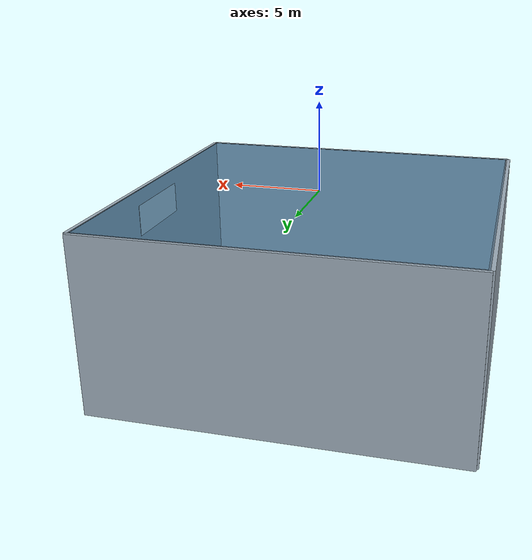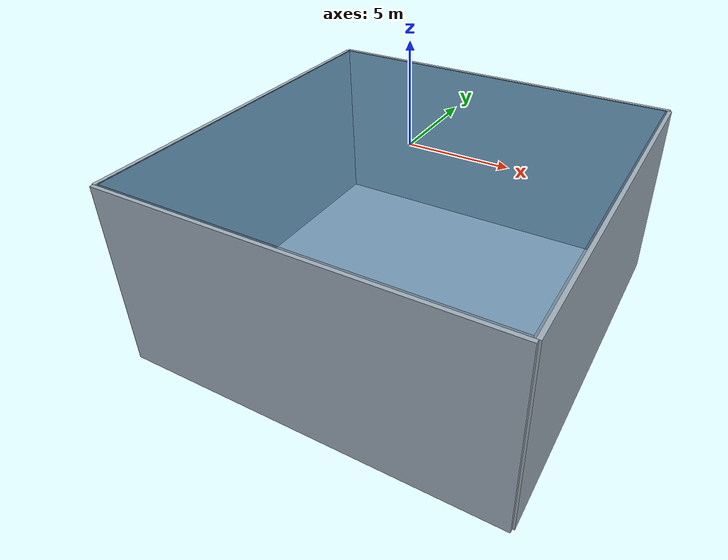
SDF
<sdf version="1.9">
 <world name="playground">
  <gravity>0 0 -9.81</gravity>
  <physics name="1ms" type="ode">
   <max_step_size>0.001</max_step_size>
   <real_time_factor>1.0</real_time_factor>
  </physics>
  <plugin filename="gz-sim-physics-system" name="gz::sim::systems::Physics"/>
  <plugin filename="gz-sim-user-commands-system" name="gz::sim::systems::UserCommands"/>
  <plugin filename="gz-sim-scene-broadcaster-system" name="gz::sim::systems::SceneBroadcaster"/>
  <plugin filename="gz-sim-contact-system" name="gz::sim::systems::Contact"/>
  <plugin filename="gz-sim-imu-system" name="gz::sim::systems::Imu"/>
  <plugin filename="gz-sim-air-pressure-system" name="gz::sim::systems::AirPressure"/>
  <plugin filename="gz-sim-air-speed-system" name="gz::sim::systems::AirSpeed"/>
  <plugin filename="gz-sim-apply-link-wrench-system" name="gz::sim::systems::ApplyLinkWrench"/>
  <plugin filename="gz-sim-navsat-system" name="gz::sim::systems::NavSat"/>
  <plugin filename="gz-sim-magnetometer-system" name="gz::sim::systems::Magnetometer"/>
  <plugin filename="gz-sim-sensors-system" name="gz::sim::systems::Sensors">
   <render_engine>ogre2</render_engine>
  </plugin>
  <plugin filename="libOpticalFlowSystem.so" name="custom::OpticalFlowSystem"/>
  <plugin filename="libGstCameraSystem.so" name="custom::GstCameraSystem"/>
  <plugin filename="gz-sim-buoyancy-system" name="gz::sim::systems::Buoyancy">
   <graded_buoyancy>
    <default_density>1000.0</default_density>
    <density_change><above_depth>0.0</above_depth><density>1.225</density></density_change>
   </graded_buoyancy>
   <enable>teleaquah8_0</enable>
   <enable>teleaquah8</enable>
   <enable>teleaquah8</enable>
   <enable>teleh4z_0</enable>
   <enable>teleh4z</enable>
   <enable>teleaquah8p_mono_cam</enable>
   <enable>teleaquah8p_mono_cam_0</enable>
  </plugin>
  <scene>
   <ambient>0.48 0.58 0.64 1.0</ambient>
   <background>0.53 0.81 0.92 1.0</background>
   <grid>false</grid>
   <shadows>true</shadows>
   <fog>
    <type>linear</type>
    <color>0.10 0.34 0.52 1.0</color>
    <density>0.02</density>
    <start>6.0</start>
    <end>28.0</end>
   </fog>
  </scene>
  <light type="directional" name="sun">
   <pose>0 0 80 0 0 0</pose>
   <diffuse>0.95 0.95 0.90 1</diffuse>
   <specular>0.25 0.25 0.25 1</specular>
   <attenuation>
    <range>3000</range>
    <constant>0.9</constant>
    <linear>0.01</linear>
    <quadratic>0.001</quadratic>
   </attenuation>
   <direction>-0.35 0.15 -0.92</direction>
  </light>
  <model name="square_pool_20m">
   <static>true</static>
   <link name="pool_bottom">
    <pose>0 0 -10.0 0 0 0</pose>
    <collision name="collision"><geometry><box><size>20.0 20.0 0.2</size></box></geometry></collision>
    <visual name="visual">
     <geometry><box><size>20.0 20.0 0.2</size></box></geometry>
     <material><ambient>0.68 0.72 0.76 1</ambient><diffuse>0.68 0.72 0.76 1</diffuse></material>
    </visual>
   </link>
   <link name="pool_wall_north">
    <pose>0 10.1 -5.0 0 0 0</pose>
    <collision name="collision"><geometry><box><size>20.2 0.2 10.0</size></box></geometry></collision>
    <visual name="visual">
     <geometry><box><size>20.2 0.2 10.0</size></box></geometry>
     <material><ambient>0.62 0.68 0.73 1</ambient><diffuse>0.62 0.68 0.73 1</diffuse></material>
    </visual>
   </link>
   <link name="pool_wall_south">
    <pose>0 -10.1 -5.0 0 0 0</pose>
    <collision name="collision"><geometry><box><size>20.2 0.2 10.0</size></box></geometry></collision>
    <visual name="visual">
     <geometry><box><size>20.2 0.2 10.0</size></box></geometry>
     <material><ambient>0.62 0.68 0.73 1</ambient><diffuse>0.62 0.68 0.73 1</diffuse></material>
    </visual>
   </link>
   <link name="pool_wall_east">
    <pose>10.1 0 -5.0 0 0 0</pose>
    <collision name="collision"><geometry><box><size>0.2 20.0 10.0</size></box></geometry></collision>
    <visual name="visual">
     <geometry><box><size>0.2 20.0 10.0</size></box></geometry>
     <material><ambient>0.62 0.68 0.73 1</ambient><diffuse>0.62 0.68 0.73 1</diffuse></material>
    </visual>
   </link>
   <link name="pool_wall_west">
    <pose>-10.1 0 -5.0 0 0 0</pose>
    <collision name="collision"><geometry><box><size>0.2 20.0 10.0</size></box></geometry></collision>
    <visual name="visual">
     <geometry><box><size>0.2 20.0 10.0</size></box></geometry>
     <material><ambient>0.62 0.68 0.73 1</ambient><diffuse>0.62 0.68 0.73 1</diffuse></material>
    </visual>
   </link>
   <link name="pool_reference_wall">
    <pose>9.95 0 -1.8 0 0 0</pose>
    <visual name="lane_panel">
     <geometry><box><size>0.02 5.0 1.8</size></box></geometry>
     <material><ambient>0.78 0.84 0.88 1</ambient><diffuse>0.78 0.84 0.88 1</diffuse></material>
    </visual>
   </link>
   <link name="water_volume">
    <pose>0 0 -5.0 0 0 0</pose>
    <visual name="water_surface_visual">
     <pose>0 0 5.0 0 0 0</pose>
     <geometry><box><size>19.8 19.8 0.01</size></box></geometry>
     <material>
      <ambient>0.14 0.46 0.68 0.38</ambient>
      <diffuse>0.14 0.46 0.68 0.38</diffuse>
      <specular>0.85 0.85 0.85 0.50</specular>
      <emissive>0.01 0.02 0.03 0.05</emissive>
     </material>
    </visual>
    <visual name="water_bottom_visual">
     <pose>0 0 -5.0 0 0 0</pose>
     <geometry><box><size>19.8 19.8 0.02</size></box></geometry>
     <material>
      <ambient>0.10 0.35 0.55 0.28</ambient>
      <diffuse>0.10 0.35 0.55 0.28</diffuse>
      <specular>0.30 0.30 0.30 0.20</specular>
     </material>
    </visual>
    <visual name="water_north_visual">
     <pose>0 9.9 0 0 0 0</pose>
     <geometry><box><size>19.8 0.08 10.0</size></box></geometry>
     <material>
      <ambient>0.10 0.35 0.55 0.34</ambient>
      <diffuse>0.10 0.35 0.55 0.34</diffuse>
      <specular>0.30 0.30 0.30 0.24</specular>
     </material>
    </visual>
    <visual name="water_south_visual">
     <pose>0 -9.9 0 0 0 0</pose>
     <geometry><box><size>19.8 0.08 10.0</size></box></geometry>
     <material>
      <ambient>0.10 0.35 0.55 0.34</ambient>
      <diffuse>0.10 0.35 0.55 0.34</diffuse>
      <specular>0.30 0.30 0.30 0.24</specular>
     </material>
    </visual>
    <visual name="water_east_visual">
     <pose>9.9 0 0 0 0 0</pose>
     <geometry><box><size>0.08 19.8 10.0</size></box></geometry>
     <material>
      <ambient>0.10 0.35 0.55 0.34</ambient>
      <diffuse>0.10 0.35 0.55 0.34</diffuse>
      <specular>0.30 0.30 0.30 0.24</specular>
     </material>
    </visual>
    <visual name="water_west_visual">
     <pose>-9.9 0 0 0 0 0</pose>
     <geometry><box><size>0.08 19.8 10.0</size></box></geometry>
     <material>
      <ambient>0.10 0.35 0.55 0.34</ambient>
      <diffuse>0.10 0.35 0.55 0.34</diffuse>
      <specular>0.30 0.30 0.30 0.24</specular>
     </material>
    </visual>
   </link>
  </model>
  <spherical_coordinates>
   <surface_model>EARTH_WGS84</surface_model>
   <world_frame_orientation>ENU</world_frame_orientation>
   <latitude_deg>47.397971057728974</latitude_deg>
   <longitude_deg>8.546163739800146</longitude_deg>
   <elevation>0</elevation>
  </spherical_coordinates>
 </world>
</sdf>
